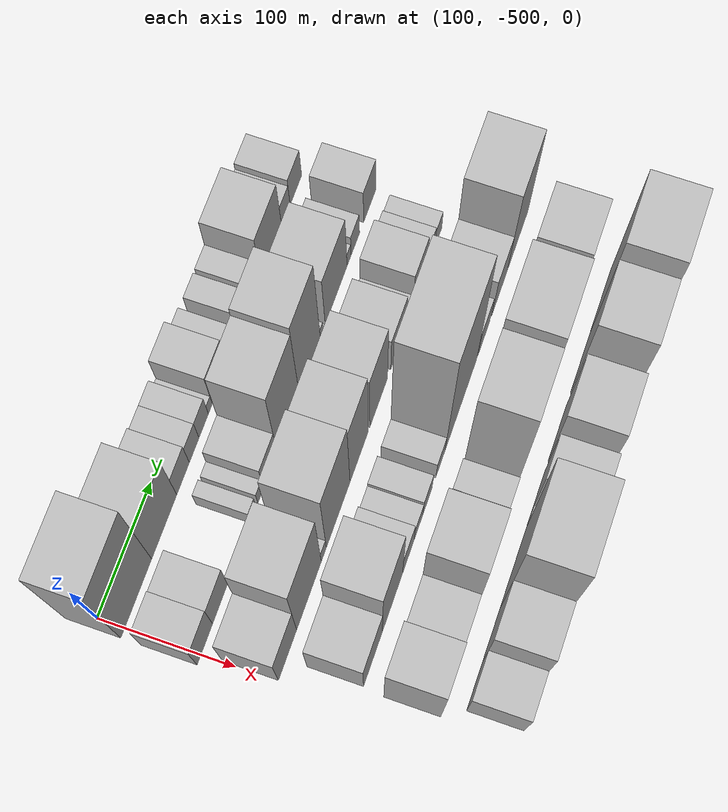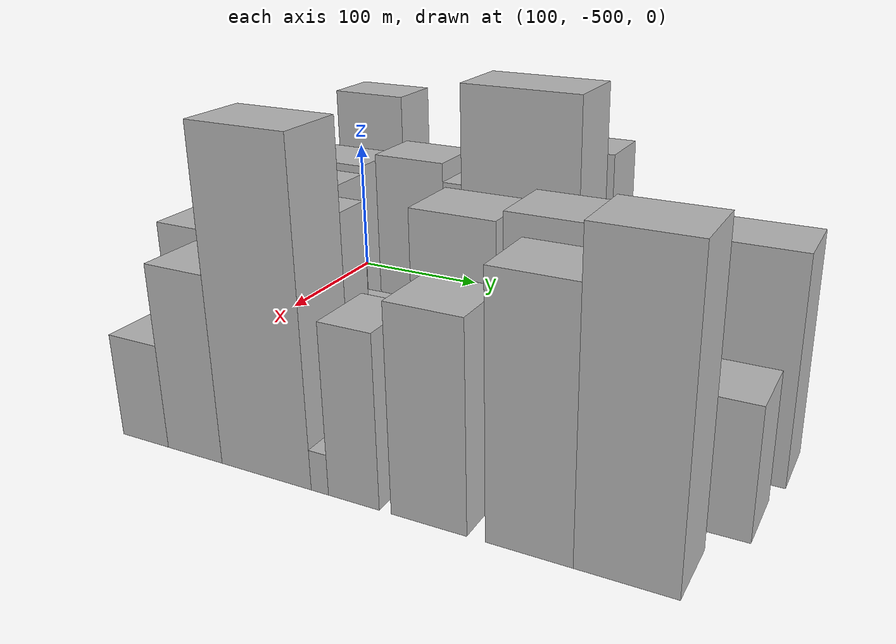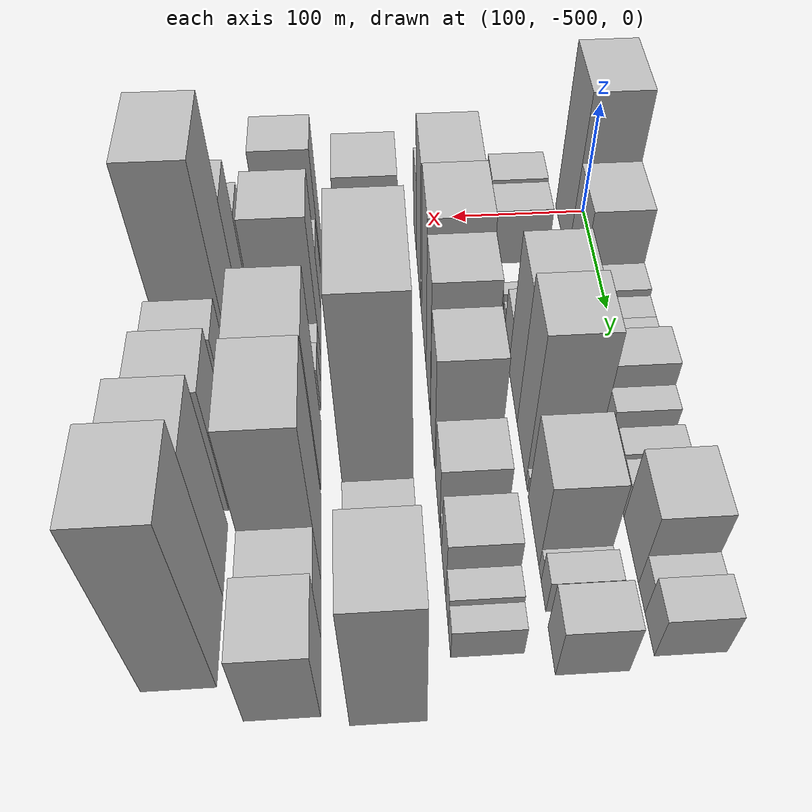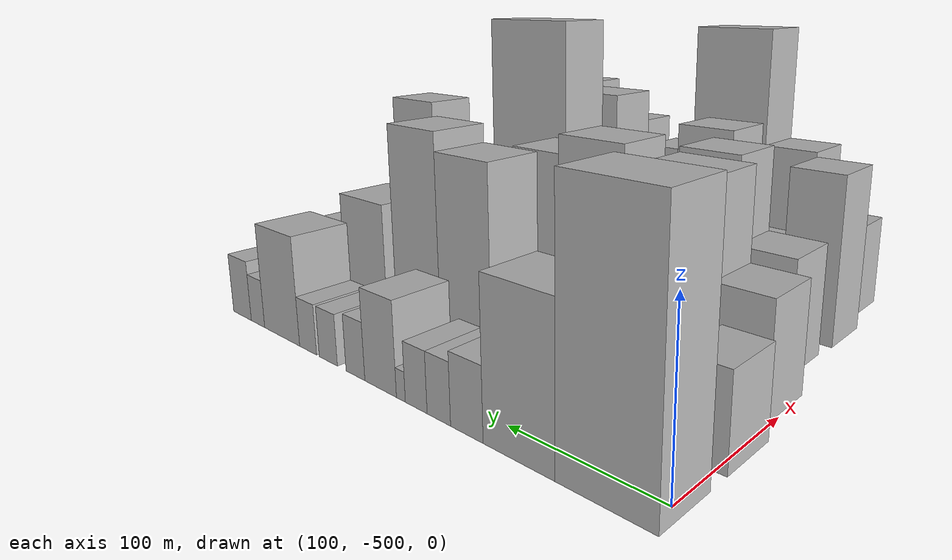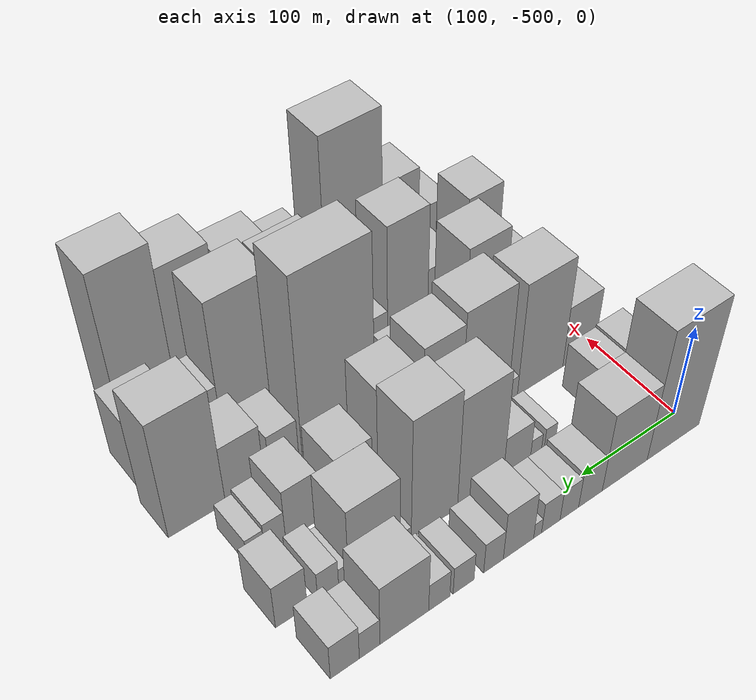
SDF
<sdf version="1.6">
 <world name="default">
  <model name="building_11">
   <static>1</static>
   <pose>100.0000 -478.4523 0 0.000000 0.000000 0.000000</pose>
   <link name="link">
    <pose>0 0 73.50 0 0 0</pose>
    <collision name="collision"><geometry><box><size>40.0000 57.1301 147.0000</size></box></geometry></collision>
    <visual name="visual">
     <cast_shadows>0</cast_shadows>
     <geometry><box><size>40.0000 57.1301 147.0000</size></box></geometry>
     <material>
      <script>
       <uri>model://HANNAS_wall/materials/scripts</uri>
       <uri>model://HANNAS_wall/materials/textures</uri>
       <name>vrc/HANNAS_wall</name>
      </script>
     </material>
    </visual>
   </link>
  </model>
  <model name="building_12">
   <static>1</static>
   <pose>100.0000 -426.1134 0 0.000000 0.000000 0.000000</pose>
   <link name="link">
    <pose>0 0 45.00 0 0 0</pose>
    <collision name="collision"><geometry><box><size>40.0000 47.5477 90.0000</size></box></geometry></collision>
    <visual name="visual">
     <cast_shadows>0</cast_shadows>
     <geometry><box><size>40.0000 47.5477 90.0000</size></box></geometry>
     <material>
      <script>
       <uri>model://HANNAS_wall/materials/scripts</uri>
       <uri>model://HANNAS_wall/materials/textures</uri>
       <name>vrc/HANNAS_wall</name>
      </script>
     </material>
    </visual>
   </link>
  </model>
  <model name="building_13">
   <static>1</static>
   <pose>100.0000 -390.1908 0 0.000000 0.000000 0.000000</pose>
   <link name="link">
    <pose>0 0 21.00 0 0 0</pose>
    <collision name="collision"><geometry><box><size>40.0000 24.2976 42.0000</size></box></geometry></collision>
    <visual name="visual">
     <cast_shadows>0</cast_shadows>
     <geometry><box><size>40.0000 24.2976 42.0000</size></box></geometry>
     <material>
      <script>
       <uri>model://HANNAS_wall/materials/scripts</uri>
       <uri>model://HANNAS_wall/materials/textures</uri>
       <name>vrc/HANNAS_wall</name>
      </script>
     </material>
    </visual>
   </link>
  </model>
  <model name="building_14">
   <static>1</static>
   <pose>100.0000 -368.6567 0 0.000000 0.000000 0.000000</pose>
   <link name="link">
    <pose>0 0 18.00 0 0 0</pose>
    <collision name="collision"><geometry><box><size>40.0000 18.7706 36.0000</size></box></geometry></collision>
    <visual name="visual">
     <cast_shadows>0</cast_shadows>
     <geometry><box><size>40.0000 18.7706 36.0000</size></box></geometry>
     <material>
      <script>
       <uri>model://HANNAS_wall/materials/scripts</uri>
       <uri>model://HANNAS_wall/materials/textures</uri>
       <name>vrc/HANNAS_wall</name>
      </script>
     </material>
    </visual>
   </link>
  </model>
  <model name="building_15">
   <static>1</static>
   <pose>100.0000 -350.0476 0 0.000000 0.000000 0.000000</pose>
   <link name="link">
    <pose>0 0 18.00 0 0 0</pose>
    <collision name="collision"><geometry><box><size>40.0000 18.4478 36.0000</size></box></geometry></collision>
    <visual name="visual">
     <cast_shadows>0</cast_shadows>
     <geometry><box><size>40.0000 18.4478 36.0000</size></box></geometry>
     <material>
      <script>
       <uri>model://HANNAS_wall/materials/scripts</uri>
       <uri>model://HANNAS_wall/materials/textures</uri>
       <name>vrc/HANNAS_wall</name>
      </script>
     </material>
    </visual>
   </link>
  </model>
  <model name="building_16">
   <static>1</static>
   <pose>100.0000 -336.9189 0 0.000000 0.000000 0.000000</pose>
   <link name="link">
    <pose>0 0 9.00 0 0 0</pose>
    <collision name="collision"><geometry><box><size>40.0000 7.8095 18.0000</size></box></geometry></collision>
    <visual name="visual">
     <cast_shadows>0</cast_shadows>
     <geometry><box><size>40.0000 7.8095 18.0000</size></box></geometry>
     <material>
      <script>
       <uri>model://HANNAS_wall/materials/scripts</uri>
       <uri>model://HANNAS_wall/materials/textures</uri>
       <name>vrc/HANNAS_wall</name>
      </script>
     </material>
    </visual>
   </link>
  </model>
  <model name="building_17">
   <static>1</static>
   <pose>100.0000 -318.3340 0 0.000000 0.000000 0.000000</pose>
   <link name="link">
    <pose>0 0 28.50 0 0 0</pose>
    <collision name="collision"><geometry><box><size>40.0000 29.3602 57.0000</size></box></geometry></collision>
    <visual name="visual">
     <cast_shadows>0</cast_shadows>
     <geometry><box><size>40.0000 29.3602 57.0000</size></box></geometry>
     <material>
      <script>
       <uri>model://HANNAS_wall/materials/scripts</uri>
       <uri>model://HANNAS_wall/materials/textures</uri>
       <name>vrc/HANNAS_wall</name>
      </script>
     </material>
    </visual>
   </link>
  </model>
  <model name="building_18">
   <static>1</static>
   <pose>100.0000 -294.3036 0 0.000000 0.000000 0.000000</pose>
   <link name="link">
    <pose>0 0 18.00 0 0 0</pose>
    <collision name="collision"><geometry><box><size>40.0000 18.7005 36.0000</size></box></geometry></collision>
    <visual name="visual">
     <cast_shadows>0</cast_shadows>
     <geometry><box><size>40.0000 18.7005 36.0000</size></box></geometry>
     <material>
      <script>
       <uri>model://HANNAS_wall/materials/scripts</uri>
       <uri>model://HANNAS_wall/materials/textures</uri>
       <name>vrc/HANNAS_wall</name>
      </script>
     </material>
    </visual>
   </link>
  </model>
  <model name="building_19">
   <static>1</static>
   <pose>100.0000 -266.2301 0 0.000000 0.000000 0.000000</pose>
   <link name="link">
    <pose>0 0 16.50 0 0 0</pose>
    <collision name="collision"><geometry><box><size>40.0000 19.4466 33.0000</size></box></geometry></collision>
    <visual name="visual">
     <cast_shadows>0</cast_shadows>
     <geometry><box><size>40.0000 19.4466 33.0000</size></box></geometry>
     <material>
      <script>
       <uri>model://HANNAS_wall/materials/scripts</uri>
       <uri>model://HANNAS_wall/materials/textures</uri>
       <name>vrc/HANNAS_wall</name>
      </script>
     </material>
    </visual>
   </link>
  </model>
  <model name="building_20">
   <static>1</static>
   <pose>100.0000 -243.8483 0 0.000000 0.000000 0.000000</pose>
   <link name="link">
    <pose>0 0 16.50 0 0 0</pose>
    <collision name="collision"><geometry><box><size>40.0000 19.3169 33.0000</size></box></geometry></collision>
    <visual name="visual">
     <cast_shadows>0</cast_shadows>
     <geometry><box><size>40.0000 19.3169 33.0000</size></box></geometry>
     <material>
      <script>
       <uri>model://HANNAS_wall/materials/scripts</uri>
       <uri>model://HANNAS_wall/materials/textures</uri>
       <name>vrc/HANNAS_wall</name>
      </script>
     </material>
    </visual>
   </link>
  </model>
  <model name="building_21">
   <static>1</static>
   <pose>100.0000 -212.6114 0 0.000000 0.000000 0.000000</pose>
   <link name="link">
    <pose>0 0 36.00 0 0 0</pose>
    <collision name="collision"><geometry><box><size>40.0000 43.1568 72.0000</size></box></geometry></collision>
    <visual name="visual">
     <cast_shadows>0</cast_shadows>
     <geometry><box><size>40.0000 43.1568 72.0000</size></box></geometry>
     <material>
      <script>
       <uri>model://HANNAS_wall/materials/scripts</uri>
       <uri>model://HANNAS_wall/materials/textures</uri>
       <name>vrc/HANNAS_wall</name>
      </script>
     </material>
    </visual>
   </link>
  </model>
  <model name="building_22">
   <static>1</static>
   <pose>100.0000 -182.1279 0 0.000000 0.000000 0.000000</pose>
   <link name="link">
    <pose>0 0 16.50 0 0 0</pose>
    <collision name="collision"><geometry><box><size>40.0000 17.8102 33.0000</size></box></geometry></collision>
    <visual name="visual">
     <cast_shadows>0</cast_shadows>
     <geometry><box><size>40.0000 17.8102 33.0000</size></box></geometry>
     <material>
      <script>
       <uri>model://HANNAS_wall/materials/scripts</uri>
       <uri>model://HANNAS_wall/materials/textures</uri>
       <name>vrc/HANNAS_wall</name>
      </script>
     </material>
    </visual>
   </link>
  </model>
  <model name="building_23">
   <static>1</static>
   <pose>100.0000 -160.9204 0 0.000000 0.000000 0.000000</pose>
   <link name="link">
    <pose>0 0 21.00 0 0 0</pose>
    <collision name="collision"><geometry><box><size>40.0000 24.6049 42.0000</size></box></geometry></collision>
    <visual name="visual">
     <cast_shadows>0</cast_shadows>
     <geometry><box><size>40.0000 24.6049 42.0000</size></box></geometry>
     <material>
      <script>
       <uri>model://HANNAS_wall/materials/scripts</uri>
       <uri>model://HANNAS_wall/materials/textures</uri>
       <name>vrc/HANNAS_wall</name>
      </script>
     </material>
    </visual>
   </link>
  </model>
  <model name="building_70">
   <static>1</static>
   <pose>155.0000 -492.4519 0 0.000000 0.000000 0.000000</pose>
   <link name="link">
    <pose>0 0 27.00 0 0 0</pose>
    <collision name="collision"><geometry><box><size>40.0000 29.1599 54.0000</size></box></geometry></collision>
    <visual name="visual">
     <cast_shadows>0</cast_shadows>
     <geometry><box><size>40.0000 29.1599 54.0000</size></box></geometry>
     <material>
      <script>
       <uri>model://HANNAS_wall/materials/scripts</uri>
       <uri>model://HANNAS_wall/materials/textures</uri>
       <name>vrc/HANNAS_wall</name>
      </script>
     </material>
    </visual>
   </link>
  </model>
  <model name="building_71">
   <static>1</static>
   <pose>155.0000 -463.3509 0 0.000000 0.000000 0.000000</pose>
   <link name="link">
    <pose>0 0 25.50 0 0 0</pose>
    <collision name="collision"><geometry><box><size>40.0000 29.0419 51.0000</size></box></geometry></collision>
    <visual name="visual">
     <cast_shadows>0</cast_shadows>
     <geometry><box><size>40.0000 29.0419 51.0000</size></box></geometry>
     <material>
      <script>
       <uri>model://HANNAS_wall/materials/scripts</uri>
       <uri>model://HANNAS_wall/materials/textures</uri>
       <name>vrc/HANNAS_wall</name>
      </script>
     </material>
    </visual>
   </link>
  </model>
  <model name="building_72">
   <static>1</static>
   <pose>155.0000 -398.5140 0 0.000000 0.000000 0.000000</pose>
   <link name="link">
    <pose>0 0 13.50 0 0 0</pose>
    <collision name="collision"><geometry><box><size>40.0000 11.5440 27.0000</size></box></geometry></collision>
    <visual name="visual">
     <cast_shadows>0</cast_shadows>
     <geometry><box><size>40.0000 11.5440 27.0000</size></box></geometry>
     <material>
      <script>
       <uri>model://HANNAS_wall/materials/scripts</uri>
       <uri>model://HANNAS_wall/materials/textures</uri>
       <name>vrc/HANNAS_wall</name>
      </script>
     </material>
    </visual>
   </link>
  </model>
  <model name="building_73">
   <static>1</static>
   <pose>155.0000 -384.1183 0 0.000000 0.000000 0.000000</pose>
   <link name="link">
    <pose>0 0 12.00 0 0 0</pose>
    <collision name="collision"><geometry><box><size>40.0000 11.2474 24.0000</size></box></geometry></collision>
    <visual name="visual">
     <cast_shadows>0</cast_shadows>
     <geometry><box><size>40.0000 11.2474 24.0000</size></box></geometry>
     <material>
      <script>
       <uri>model://HANNAS_wall/materials/scripts</uri>
       <uri>model://HANNAS_wall/materials/textures</uri>
       <name>vrc/HANNAS_wall</name>
      </script>
     </material>
    </visual>
   </link>
  </model>
  <model name="building_74">
   <static>1</static>
   <pose>155.0000 -364.7900 0 0.000000 0.000000 0.000000</pose>
   <link name="link">
    <pose>0 0 24.00 0 0 0</pose>
    <collision name="collision"><geometry><box><size>40.0000 27.4093 48.0000</size></box></geometry></collision>
    <visual name="visual">
     <cast_shadows>0</cast_shadows>
     <geometry><box><size>40.0000 27.4093 48.0000</size></box></geometry>
     <material>
      <script>
       <uri>model://HANNAS_wall/materials/scripts</uri>
       <uri>model://HANNAS_wall/materials/textures</uri>
       <name>vrc/HANNAS_wall</name>
      </script>
     </material>
    </visual>
   </link>
  </model>
  <model name="building_75">
   <static>1</static>
   <pose>155.0000 -328.5406 0 0.000000 0.000000 0.000000</pose>
   <link name="link">
    <pose>0 0 63.00 0 0 0</pose>
    <collision name="collision"><geometry><box><size>40.0000 45.0895 126.0000</size></box></geometry></collision>
    <visual name="visual">
     <cast_shadows>0</cast_shadows>
     <geometry><box><size>40.0000 45.0895 126.0000</size></box></geometry>
     <material>
      <script>
       <uri>model://HANNAS_wall/materials/scripts</uri>
       <uri>model://HANNAS_wall/materials/textures</uri>
       <name>vrc/HANNAS_wall</name>
      </script>
     </material>
    </visual>
   </link>
  </model>
  <model name="building_76">
   <static>1</static>
   <pose>155.0000 -284.0143 0 0.000000 0.000000 0.000000</pose>
   <link name="link">
    <pose>0 0 69.00 0 0 0</pose>
    <collision name="collision"><geometry><box><size>40.0000 43.9630 138.0000</size></box></geometry></collision>
    <visual name="visual">
     <cast_shadows>0</cast_shadows>
     <geometry><box><size>40.0000 43.9630 138.0000</size></box></geometry>
     <material>
      <script>
       <uri>model://HANNAS_wall/materials/scripts</uri>
       <uri>model://HANNAS_wall/materials/textures</uri>
       <name>vrc/HANNAS_wall</name>
      </script>
     </material>
    </visual>
   </link>
  </model>
  <model name="building_77">
   <static>1</static>
   <pose>155.0000 -258.7945 0 0.000000 0.000000 0.000000</pose>
   <link name="link">
    <pose>0 0 7.50 0 0 0</pose>
    <collision name="collision"><geometry><box><size>40.0000 6.4765 15.0000</size></box></geometry></collision>
    <visual name="visual">
     <cast_shadows>0</cast_shadows>
     <geometry><box><size>40.0000 6.4765 15.0000</size></box></geometry>
     <material>
      <script>
       <uri>model://HANNAS_wall/materials/scripts</uri>
       <uri>model://HANNAS_wall/materials/textures</uri>
       <name>vrc/HANNAS_wall</name>
      </script>
     </material>
    </visual>
   </link>
  </model>
  <model name="building_78">
   <static>1</static>
   <pose>155.0000 -228.1541 0 0.000000 0.000000 0.000000</pose>
   <link name="link">
    <pose>0 0 42.00 0 0 0</pose>
    <collision name="collision"><geometry><box><size>40.0000 46.8044 84.0000</size></box></geometry></collision>
    <visual name="visual">
     <cast_shadows>0</cast_shadows>
     <geometry><box><size>40.0000 46.8044 84.0000</size></box></geometry>
     <material>
      <script>
       <uri>model://HANNAS_wall/materials/scripts</uri>
       <uri>model://HANNAS_wall/materials/textures</uri>
       <name>vrc/HANNAS_wall</name>
      </script>
     </material>
    </visual>
   </link>
  </model>
  <model name="building_79">
   <static>1</static>
   <pose>155.0000 -200.3555 0 0.000000 0.000000 0.000000</pose>
   <link name="link">
    <pose>0 0 10.50 0 0 0</pose>
    <collision name="collision"><geometry><box><size>40.0000 8.7927 21.0000</size></box></geometry></collision>
    <visual name="visual">
     <cast_shadows>0</cast_shadows>
     <geometry><box><size>40.0000 8.7927 21.0000</size></box></geometry>
     <material>
      <script>
       <uri>model://HANNAS_wall/materials/scripts</uri>
       <uri>model://HANNAS_wall/materials/textures</uri>
       <name>vrc/HANNAS_wall</name>
      </script>
     </material>
    </visual>
   </link>
  </model>
  <model name="building_80">
   <static>1</static>
   <pose>155.0000 -186.7590 0 0.000000 0.000000 0.000000</pose>
   <link name="link">
    <pose>0 0 16.50 0 0 0</pose>
    <collision name="collision"><geometry><box><size>40.0000 18.4003 33.0000</size></box></geometry></collision>
    <visual name="visual">
     <cast_shadows>0</cast_shadows>
     <geometry><box><size>40.0000 18.4003 33.0000</size></box></geometry>
     <material>
      <script>
       <uri>model://HANNAS_wall/materials/scripts</uri>
       <uri>model://HANNAS_wall/materials/textures</uri>
       <name>vrc/HANNAS_wall</name>
      </script>
     </material>
    </visual>
   </link>
  </model>
  <model name="building_81">
   <static>1</static>
   <pose>155.0000 -154.9765 0 0.000000 0.000000 0.000000</pose>
   <link name="link">
    <pose>0 0 25.50 0 0 0</pose>
    <collision name="collision"><geometry><box><size>40.0000 27.1647 51.0000</size></box></geometry></collision>
    <visual name="visual">
     <cast_shadows>0</cast_shadows>
     <geometry><box><size>40.0000 27.1647 51.0000</size></box></geometry>
     <material>
      <script>
       <uri>model://HANNAS_wall/materials/scripts</uri>
       <uri>model://HANNAS_wall/materials/textures</uri>
       <name>vrc/HANNAS_wall</name>
      </script>
     </material>
    </visual>
   </link>
  </model>
  <model name="building_123">
   <static>1</static>
   <pose>210.0000 -480.9756 0 0.000000 0.000000 0.000000</pose>
   <link name="link">
    <pose>0 0 34.50 0 0 0</pose>
    <collision name="collision"><geometry><box><size>40.0000 35.8421 69.0000</size></box></geometry></collision>
    <visual name="visual">
     <cast_shadows>0</cast_shadows>
     <geometry><box><size>40.0000 35.8421 69.0000</size></box></geometry>
     <material>
      <script>
       <uri>model://HANNAS_wall/materials/scripts</uri>
       <uri>model://HANNAS_wall/materials/textures</uri>
       <name>vrc/HANNAS_wall</name>
      </script>
     </material>
    </visual>
   </link>
  </model>
  <model name="building_124">
   <static>1</static>
   <pose>210.0000 -438.4236 0 0.000000 0.000000 0.000000</pose>
   <link name="link">
    <pose>0 0 63.00 0 0 0</pose>
    <collision name="collision"><geometry><box><size>40.0000 49.2618 126.0000</size></box></geometry></collision>
    <visual name="visual">
     <cast_shadows>0</cast_shadows>
     <geometry><box><size>40.0000 49.2618 126.0000</size></box></geometry>
     <material>
      <script>
       <uri>model://HANNAS_wall/materials/scripts</uri>
       <uri>model://HANNAS_wall/materials/textures</uri>
       <name>vrc/HANNAS_wall</name>
      </script>
     </material>
    </visual>
   </link>
  </model>
  <model name="building_125">
   <static>1</static>
   <pose>210.0000 -408.6384 0 0.000000 0.000000 0.000000</pose>
   <link name="link">
    <pose>0 0 12.00 0 0 0</pose>
    <collision name="collision"><geometry><box><size>40.0000 10.3087 24.0000</size></box></geometry></collision>
    <visual name="visual">
     <cast_shadows>0</cast_shadows>
     <geometry><box><size>40.0000 10.3087 24.0000</size></box></geometry>
     <material>
      <script>
       <uri>model://HANNAS_wall/materials/scripts</uri>
       <uri>model://HANNAS_wall/materials/textures</uri>
       <name>vrc/HANNAS_wall</name>
      </script>
     </material>
    </visual>
   </link>
  </model>
  <model name="building_126">
   <static>1</static>
   <pose>210.0000 -379.1248 0 0.000000 0.000000 0.000000</pose>
   <link name="link">
    <pose>0 0 67.50 0 0 0</pose>
    <collision name="collision"><geometry><box><size>40.0000 48.7184 135.0000</size></box></geometry></collision>
    <visual name="visual">
     <cast_shadows>0</cast_shadows>
     <geometry><box><size>40.0000 48.7184 135.0000</size></box></geometry>
     <material>
      <script>
       <uri>model://HANNAS_wall/materials/scripts</uri>
       <uri>model://HANNAS_wall/materials/textures</uri>
       <name>vrc/HANNAS_wall</name>
      </script>
     </material>
    </visual>
   </link>
  </model>
  <model name="building_127">
   <static>1</static>
   <pose>210.0000 -335.4443 0 0.000000 0.000000 0.000000</pose>
   <link name="link">
    <pose>0 0 61.50 0 0 0</pose>
    <collision name="collision"><geometry><box><size>40.0000 38.6425 123.0000</size></box></geometry></collision>
    <visual name="visual">
     <cast_shadows>0</cast_shadows>
     <geometry><box><size>40.0000 38.6425 123.0000</size></box></geometry>
     <material>
      <script>
       <uri>model://HANNAS_wall/materials/scripts</uri>
       <uri>model://HANNAS_wall/materials/textures</uri>
       <name>vrc/HANNAS_wall</name>
      </script>
     </material>
    </visual>
   </link>
  </model>
  <model name="building_128">
   <static>1</static>
   <pose>210.0000 -294.1311 0 0.000000 0.000000 0.000000</pose>
   <link name="link">
    <pose>0 0 52.50 0 0 0</pose>
    <collision name="collision"><geometry><box><size>40.0000 37.9840 105.0000</size></box></geometry></collision>
    <visual name="visual">
     <cast_shadows>0</cast_shadows>
     <geometry><box><size>40.0000 37.9840 105.0000</size></box></geometry>
     <material>
      <script>
       <uri>model://HANNAS_wall/materials/scripts</uri>
       <uri>model://HANNAS_wall/materials/textures</uri>
       <name>vrc/HANNAS_wall</name>
      </script>
     </material>
    </visual>
   </link>
  </model>
  <model name="building_129">
   <static>1</static>
   <pose>210.0000 -250.9716 0 0.000000 0.000000 0.000000</pose>
   <link name="link">
    <pose>0 0 30.00 0 0 0</pose>
    <collision name="collision"><geometry><box><size>40.0000 34.3349 60.0000</size></box></geometry></collision>
    <visual name="visual">
     <cast_shadows>0</cast_shadows>
     <geometry><box><size>40.0000 34.3349 60.0000</size></box></geometry>
     <material>
      <script>
       <uri>model://HANNAS_wall/materials/scripts</uri>
       <uri>model://HANNAS_wall/materials/textures</uri>
       <name>vrc/HANNAS_wall</name>
      </script>
     </material>
    </visual>
   </link>
  </model>
  <model name="building_130">
   <static>1</static>
   <pose>210.0000 -224.2489 0 0.000000 0.000000 0.000000</pose>
   <link name="link">
    <pose>0 0 12.00 0 0 0</pose>
    <collision name="collision"><geometry><box><size>40.0000 11.1104 24.0000</size></box></geometry></collision>
    <visual name="visual">
     <cast_shadows>0</cast_shadows>
     <geometry><box><size>40.0000 11.1104 24.0000</size></box></geometry>
     <material>
      <script>
       <uri>model://HANNAS_wall/materials/scripts</uri>
       <uri>model://HANNAS_wall/materials/textures</uri>
       <name>vrc/HANNAS_wall</name>
      </script>
     </material>
    </visual>
   </link>
  </model>
  <model name="building_131">
   <static>1</static>
   <pose>210.0000 -203.4610 0 0.000000 0.000000 0.000000</pose>
   <link name="link">
    <pose>0 0 30.00 0 0 0</pose>
    <collision name="collision"><geometry><box><size>40.0000 30.4653 60.0000</size></box></geometry></collision>
    <visual name="visual">
     <cast_shadows>0</cast_shadows>
     <geometry><box><size>40.0000 30.4653 60.0000</size></box></geometry>
     <material>
      <script>
       <uri>model://HANNAS_wall/materials/scripts</uri>
       <uri>model://HANNAS_wall/materials/textures</uri>
       <name>vrc/HANNAS_wall</name>
      </script>
     </material>
    </visual>
   </link>
  </model>
  <model name="building_132">
   <static>1</static>
   <pose>210.0000 -179.1296 0 0.000000 0.000000 0.000000</pose>
   <link name="link">
    <pose>0 0 18.00 0 0 0</pose>
    <collision name="collision"><geometry><box><size>40.0000 18.1977 36.0000</size></box></geometry></collision>
    <visual name="visual">
     <cast_shadows>0</cast_shadows>
     <geometry><box><size>40.0000 18.1977 36.0000</size></box></geometry>
     <material>
      <script>
       <uri>model://HANNAS_wall/materials/scripts</uri>
       <uri>model://HANNAS_wall/materials/textures</uri>
       <name>vrc/HANNAS_wall</name>
      </script>
     </material>
    </visual>
   </link>
  </model>
  <model name="building_133">
   <static>1</static>
   <pose>210.0000 -162.3080 0 0.000000 0.000000 0.000000</pose>
   <link name="link">
    <pose>0 0 15.00 0 0 0</pose>
    <collision name="collision"><geometry><box><size>40.0000 15.4454 30.0000</size></box></geometry></collision>
    <visual name="visual">
     <cast_shadows>0</cast_shadows>
     <geometry><box><size>40.0000 15.4454 30.0000</size></box></geometry>
     <material>
      <script>
       <uri>model://HANNAS_wall/materials/scripts</uri>
       <uri>model://HANNAS_wall/materials/textures</uri>
       <name>vrc/HANNAS_wall</name>
      </script>
     </material>
    </visual>
   </link>
  </model>
  <model name="building_174">
   <static>1</static>
   <pose>265.0000 -464.8929 0 0.000000 0.000000 0.000000</pose>
   <link name="link">
    <pose>0 0 36.00 0 0 0</pose>
    <collision name="collision"><geometry><box><size>40.0000 38.2590 72.0000</size></box></geometry></collision>
    <visual name="visual">
     <cast_shadows>0</cast_shadows>
     <geometry><box><size>40.0000 38.2590 72.0000</size></box></geometry>
     <material>
      <script>
       <uri>model://HANNAS_wall/materials/scripts</uri>
       <uri>model://HANNAS_wall/materials/textures</uri>
       <name>vrc/HANNAS_wall</name>
      </script>
     </material>
    </visual>
   </link>
  </model>
  <model name="building_175">
   <static>1</static>
   <pose>265.0000 -424.7679 0 0.000000 0.000000 0.000000</pose>
   <link name="link">
    <pose>0 0 63.00 0 0 0</pose>
    <collision name="collision"><geometry><box><size>40.0000 41.9910 126.0000</size></box></geometry></collision>
    <visual name="visual">
     <cast_shadows>0</cast_shadows>
     <geometry><box><size>40.0000 41.9910 126.0000</size></box></geometry>
     <material>
      <script>
       <uri>model://HANNAS_wall/materials/scripts</uri>
       <uri>model://HANNAS_wall/materials/textures</uri>
       <name>vrc/HANNAS_wall</name>
      </script>
     </material>
    </visual>
   </link>
  </model>
  <model name="building_176">
   <static>1</static>
   <pose>265.0000 -391.5584 0 0.000000 0.000000 0.000000</pose>
   <link name="link">
    <pose>0 0 24.00 0 0 0</pose>
    <collision name="collision"><geometry><box><size>40.0000 24.4280 48.0000</size></box></geometry></collision>
    <visual name="visual">
     <cast_shadows>0</cast_shadows>
     <geometry><box><size>40.0000 24.4280 48.0000</size></box></geometry>
     <material>
      <script>
       <uri>model://HANNAS_wall/materials/scripts</uri>
       <uri>model://HANNAS_wall/materials/textures</uri>
       <name>vrc/HANNAS_wall</name>
      </script>
     </material>
    </visual>
   </link>
  </model>
  <model name="building_177">
   <static>1</static>
   <pose>265.0000 -369.9856 0 0.000000 0.000000 0.000000</pose>
   <link name="link">
    <pose>0 0 16.50 0 0 0</pose>
    <collision name="collision"><geometry><box><size>40.0000 18.7176 33.0000</size></box></geometry></collision>
    <visual name="visual">
     <cast_shadows>0</cast_shadows>
     <geometry><box><size>40.0000 18.7176 33.0000</size></box></geometry>
     <material>
      <script>
       <uri>model://HANNAS_wall/materials/scripts</uri>
       <uri>model://HANNAS_wall/materials/textures</uri>
       <name>vrc/HANNAS_wall</name>
      </script>
     </material>
    </visual>
   </link>
  </model>
  <model name="building_178">
   <static>1</static>
   <pose>265.0000 -350.5626 0 0.000000 0.000000 0.000000</pose>
   <link name="link">
    <pose>0 0 19.50 0 0 0</pose>
    <collision name="collision"><geometry><box><size>40.0000 20.1284 39.0000</size></box></geometry></collision>
    <visual name="visual">
     <cast_shadows>0</cast_shadows>
     <geometry><box><size>40.0000 20.1284 39.0000</size></box></geometry>
     <material>
      <script>
       <uri>model://HANNAS_wall/materials/scripts</uri>
       <uri>model://HANNAS_wall/materials/textures</uri>
       <name>vrc/HANNAS_wall</name>
      </script>
     </material>
    </visual>
   </link>
  </model>
  <model name="building_179">
   <static>1</static>
   <pose>265.0000 -322.4019 0 0.000000 0.000000 0.000000</pose>
   <link name="link">
    <pose>0 0 18.00 0 0 0</pose>
    <collision name="collision"><geometry><box><size>40.0000 20.1930 36.0000</size></box></geometry></collision>
    <visual name="visual">
     <cast_shadows>0</cast_shadows>
     <geometry><box><size>40.0000 20.1930 36.0000</size></box></geometry>
     <material>
      <script>
       <uri>model://HANNAS_wall/materials/scripts</uri>
       <uri>model://HANNAS_wall/materials/textures</uri>
       <name>vrc/HANNAS_wall</name>
      </script>
     </material>
    </visual>
   </link>
  </model>
  <model name="building_180">
   <static>1</static>
   <pose>265.0000 -277.0705 0 0.000000 0.000000 0.000000</pose>
   <link name="link">
    <pose>0 0 99.00 0 0 0</pose>
    <collision name="collision"><geometry><box><size>40.0000 70.4698 198.0000</size></box></geometry></collision>
    <visual name="visual">
     <cast_shadows>0</cast_shadows>
     <geometry><box><size>40.0000 70.4698 198.0000</size></box></geometry>
     <material>
      <script>
       <uri>model://HANNAS_wall/materials/scripts</uri>
       <uri>model://HANNAS_wall/materials/textures</uri>
       <name>vrc/HANNAS_wall</name>
      </script>
     </material>
    </visual>
   </link>
  </model>
  <model name="building_181">
   <static>1</static>
   <pose>265.0000 -225.2234 0 0.000000 0.000000 0.000000</pose>
   <link name="link">
    <pose>0 0 24.00 0 0 0</pose>
    <collision name="collision"><geometry><box><size>40.0000 27.2244 48.0000</size></box></geometry></collision>
    <visual name="visual">
     <cast_shadows>0</cast_shadows>
     <geometry><box><size>40.0000 27.2244 48.0000</size></box></geometry>
     <material>
      <script>
       <uri>model://HANNAS_wall/materials/scripts</uri>
       <uri>model://HANNAS_wall/materials/textures</uri>
       <name>vrc/HANNAS_wall</name>
      </script>
     </material>
    </visual>
   </link>
  </model>
  <model name="building_182">
   <static>1</static>
   <pose>265.0000 -189.0330 0 0.000000 0.000000 0.000000</pose>
   <link name="link">
    <pose>0 0 33.00 0 0 0</pose>
    <collision name="collision"><geometry><box><size>40.0000 35.1564 66.0000</size></box></geometry></collision>
    <visual name="visual">
     <cast_shadows>0</cast_shadows>
     <geometry><box><size>40.0000 35.1564 66.0000</size></box></geometry>
     <material>
      <script>
       <uri>model://HANNAS_wall/materials/scripts</uri>
       <uri>model://HANNAS_wall/materials/textures</uri>
       <name>vrc/HANNAS_wall</name>
      </script>
     </material>
    </visual>
   </link>
  </model>
  <model name="building_183">
   <static>1</static>
   <pose>265.0000 -146.4558 0 0.000000 0.000000 0.000000</pose>
   <link name="link">
    <pose>0 0 66.00 0 0 0</pose>
    <collision name="collision"><geometry><box><size>40.0000 49.9981 132.0000</size></box></geometry></collision>
    <visual name="visual">
     <cast_shadows>0</cast_shadows>
     <geometry><box><size>40.0000 49.9981 132.0000</size></box></geometry>
     <material>
      <script>
       <uri>model://HANNAS_wall/materials/scripts</uri>
       <uri>model://HANNAS_wall/materials/textures</uri>
       <name>vrc/HANNAS_wall</name>
      </script>
     </material>
    </visual>
   </link>
  </model>
  <model name="building_233">
   <static>1</static>
   <pose>320.0000 -468.1204 0 0.000000 0.000000 0.000000</pose>
   <link name="link">
    <pose>0 0 55.50 0 0 0</pose>
    <collision name="collision"><geometry><box><size>40.0000 36.1321 111.0000</size></box></geometry></collision>
    <visual name="visual">
     <cast_shadows>0</cast_shadows>
     <geometry><box><size>40.0000 36.1321 111.0000</size></box></geometry>
     <material>
      <script>
       <uri>model://HANNAS_wall/materials/scripts</uri>
       <uri>model://HANNAS_wall/materials/textures</uri>
       <name>vrc/HANNAS_wall</name>
      </script>
     </material>
    </visual>
   </link>
  </model>
  <model name="building_234">
   <static>1</static>
   <pose>320.0000 -446.3624 0 0.000000 0.000000 0.000000</pose>
   <link name="link">
    <pose>0 0 9.00 0 0 0</pose>
    <collision name="collision"><geometry><box><size>40.0000 7.3839 18.0000</size></box></geometry></collision>
    <visual name="visual">
     <cast_shadows>0</cast_shadows>
     <geometry><box><size>40.0000 7.3839 18.0000</size></box></geometry>
     <material>
      <script>
       <uri>model://HANNAS_wall/materials/scripts</uri>
       <uri>model://HANNAS_wall/materials/textures</uri>
       <name>vrc/HANNAS_wall</name>
      </script>
     </material>
    </visual>
   </link>
  </model>
  <model name="building_235">
   <static>1</static>
   <pose>320.0000 -426.1076 0 0.000000 0.000000 0.000000</pose>
   <link name="link">
    <pose>0 0 28.50 0 0 0</pose>
    <collision name="collision"><geometry><box><size>40.0000 33.1257 57.0000</size></box></geometry></collision>
    <visual name="visual">
     <cast_shadows>0</cast_shadows>
     <geometry><box><size>40.0000 33.1257 57.0000</size></box></geometry>
     <material>
      <script>
       <uri>model://HANNAS_wall/materials/scripts</uri>
       <uri>model://HANNAS_wall/materials/textures</uri>
       <name>vrc/HANNAS_wall</name>
      </script>
     </material>
    </visual>
   </link>
  </model>
  <model name="building_236">
   <static>1</static>
   <pose>320.0000 -388.3935 0 0.000000 0.000000 0.000000</pose>
   <link name="link">
    <pose>0 0 64.50 0 0 0</pose>
    <collision name="collision"><geometry><box><size>40.0000 42.3025 129.0000</size></box></geometry></collision>
    <visual name="visual">
     <cast_shadows>0</cast_shadows>
     <geometry><box><size>40.0000 42.3025 129.0000</size></box></geometry>
     <material>
      <script>
       <uri>model://HANNAS_wall/materials/scripts</uri>
       <uri>model://HANNAS_wall/materials/textures</uri>
       <name>vrc/HANNAS_wall</name>
      </script>
     </material>
    </visual>
   </link>
  </model>
  <model name="building_237">
   <static>1</static>
   <pose>320.0000 -356.6192 0 0.000000 0.000000 0.000000</pose>
   <link name="link">
    <pose>0 0 18.00 0 0 0</pose>
    <collision name="collision"><geometry><box><size>40.0000 21.2463 36.0000</size></box></geometry></collision>
    <visual name="visual">
     <cast_shadows>0</cast_shadows>
     <geometry><box><size>40.0000 21.2463 36.0000</size></box></geometry>
     <material>
      <script>
       <uri>model://HANNAS_wall/materials/scripts</uri>
       <uri>model://HANNAS_wall/materials/textures</uri>
       <name>vrc/HANNAS_wall</name>
      </script>
     </material>
    </visual>
   </link>
  </model>
  <model name="building_238">
   <static>1</static>
   <pose>320.0000 -334.9249 0 0.000000 0.000000 0.000000</pose>
   <link name="link">
    <pose>0 0 21.00 0 0 0</pose>
    <collision name="collision"><geometry><box><size>40.0000 22.1422 42.0000</size></box></geometry></collision>
    <visual name="visual">
     <cast_shadows>0</cast_shadows>
     <geometry><box><size>40.0000 22.1422 42.0000</size></box></geometry>
     <material>
      <script>
       <uri>model://HANNAS_wall/materials/scripts</uri>
       <uri>model://HANNAS_wall/materials/textures</uri>
       <name>vrc/HANNAS_wall</name>
      </script>
     </material>
    </visual>
   </link>
  </model>
  <model name="building_239">
   <static>1</static>
   <pose>320.0000 -289.0206 0 0.000000 0.000000 0.000000</pose>
   <link name="link">
    <pose>0 0 72.00 0 0 0</pose>
    <collision name="collision"><geometry><box><size>40.0000 49.6664 144.0000</size></box></geometry></collision>
    <visual name="visual">
     <cast_shadows>0</cast_shadows>
     <geometry><box><size>40.0000 49.6664 144.0000</size></box></geometry>
     <material>
      <script>
       <uri>model://HANNAS_wall/materials/scripts</uri>
       <uri>model://HANNAS_wall/materials/textures</uri>
       <name>vrc/HANNAS_wall</name>
      </script>
     </material>
    </visual>
   </link>
  </model>
  <model name="building_240">
   <static>1</static>
   <pose>320.0000 -232.4365 0 0.000000 0.000000 0.000000</pose>
   <link name="link">
    <pose>0 0 75.00 0 0 0</pose>
    <collision name="collision"><geometry><box><size>40.0000 55.5017 150.0000</size></box></geometry></collision>
    <visual name="visual">
     <cast_shadows>0</cast_shadows>
     <geometry><box><size>40.0000 55.5017 150.0000</size></box></geometry>
     <material>
      <script>
       <uri>model://HANNAS_wall/materials/scripts</uri>
       <uri>model://HANNAS_wall/materials/textures</uri>
       <name>vrc/HANNAS_wall</name>
      </script>
     </material>
    </visual>
   </link>
  </model>
  <model name="building_241">
   <static>1</static>
   <pose>320.0000 -187.4568 0 0.000000 0.000000 0.000000</pose>
   <link name="link">
    <pose>0 0 30.00 0 0 0</pose>
    <collision name="collision"><geometry><box><size>40.0000 34.4576 60.0000</size></box></geometry></collision>
    <visual name="visual">
     <cast_shadows>0</cast_shadows>
     <geometry><box><size>40.0000 34.4576 60.0000</size></box></geometry>
     <material>
      <script>
       <uri>model://HANNAS_wall/materials/scripts</uri>
       <uri>model://HANNAS_wall/materials/textures</uri>
       <name>vrc/HANNAS_wall</name>
      </script>
     </material>
    </visual>
   </link>
  </model>
  <model name="building_242">
   <static>1</static>
   <pose>320.0000 -148.6466 0 0.000000 0.000000 0.000000</pose>
   <link name="link">
    <pose>0 0 37.50 0 0 0</pose>
    <collision name="collision"><geometry><box><size>40.0000 43.1627 75.0000</size></box></geometry></collision>
    <visual name="visual">
     <cast_shadows>0</cast_shadows>
     <geometry><box><size>40.0000 43.1627 75.0000</size></box></geometry>
     <material>
      <script>
       <uri>model://HANNAS_wall/materials/scripts</uri>
       <uri>model://HANNAS_wall/materials/textures</uri>
       <name>vrc/HANNAS_wall</name>
      </script>
     </material>
    </visual>
   </link>
  </model>
  <model name="building_285">
   <static>1</static>
   <pose>375.0000 -459.9292 0 0.000000 0.000000 0.000000</pose>
   <link name="link">
    <pose>0 0 31.50 0 0 0</pose>
    <collision name="collision"><geometry><box><size>40.0000 33.6208 63.0000</size></box></geometry></collision>
    <visual name="visual">
     <cast_shadows>0</cast_shadows>
     <geometry><box><size>40.0000 33.6208 63.0000</size></box></geometry>
     <material>
      <script>
       <uri>model://HANNAS_wall/materials/scripts</uri>
       <uri>model://HANNAS_wall/materials/textures</uri>
       <name>vrc/HANNAS_wall</name>
      </script>
     </material>
    </visual>
   </link>
  </model>
  <model name="building_286">
   <static>1</static>
   <pose>375.0000 -423.9183 0 0.000000 0.000000 0.000000</pose>
   <link name="link">
    <pose>0 0 55.50 0 0 0</pose>
    <collision name="collision"><geometry><box><size>40.0000 38.4010 111.0000</size></box></geometry></collision>
    <visual name="visual">
     <cast_shadows>0</cast_shadows>
     <geometry><box><size>40.0000 38.4010 111.0000</size></box></geometry>
     <material>
      <script>
       <uri>model://HANNAS_wall/materials/scripts</uri>
       <uri>model://HANNAS_wall/materials/textures</uri>
       <name>vrc/HANNAS_wall</name>
      </script>
     </material>
    </visual>
   </link>
  </model>
  <model name="building_287">
   <static>1</static>
   <pose>375.0000 -375.0378 0 0.000000 0.000000 0.000000</pose>
   <link name="link">
    <pose>0 0 96.00 0 0 0</pose>
    <collision name="collision"><geometry><box><size>40.0000 59.3601 192.0000</size></box></geometry></collision>
    <visual name="visual">
     <cast_shadows>0</cast_shadows>
     <geometry><box><size>40.0000 59.3601 192.0000</size></box></geometry>
     <material>
      <script>
       <uri>model://HANNAS_wall/materials/scripts</uri>
       <uri>model://HANNAS_wall/materials/textures</uri>
       <name>vrc/HANNAS_wall</name>
      </script>
     </material>
    </visual>
   </link>
  </model>
  <model name="building_288">
   <static>1</static>
   <pose>375.0000 -339.9283 0 0.000000 0.000000 0.000000</pose>
   <link name="link">
    <pose>0 0 12.00 0 0 0</pose>
    <collision name="collision"><geometry><box><size>40.0000 10.8589 24.0000</size></box></geometry></collision>
    <visual name="visual">
     <cast_shadows>0</cast_shadows>
     <geometry><box><size>40.0000 10.8589 24.0000</size></box></geometry>
     <material>
      <script>
       <uri>model://HANNAS_wall/materials/scripts</uri>
       <uri>model://HANNAS_wall/materials/textures</uri>
       <name>vrc/HANNAS_wall</name>
      </script>
     </material>
    </visual>
   </link>
  </model>
  <model name="building_289">
   <static>1</static>
   <pose>375.0000 -318.9658 0 0.000000 0.000000 0.000000</pose>
   <link name="link">
    <pose>0 0 49.50 0 0 0</pose>
    <collision name="collision"><geometry><box><size>40.0000 31.0662 99.0000</size></box></geometry></collision>
    <visual name="visual">
     <cast_shadows>0</cast_shadows>
     <geometry><box><size>40.0000 31.0662 99.0000</size></box></geometry>
     <material>
      <script>
       <uri>model://HANNAS_wall/materials/scripts</uri>
       <uri>model://HANNAS_wall/materials/textures</uri>
       <name>vrc/HANNAS_wall</name>
      </script>
     </material>
    </visual>
   </link>
  </model>
  <model name="building_290">
   <static>1</static>
   <pose>375.0000 -274.8495 0 0.000000 0.000000 0.000000</pose>
   <link name="link">
    <pose>0 0 58.50 0 0 0</pose>
    <collision name="collision"><geometry><box><size>40.0000 43.1664 117.0000</size></box></geometry></collision>
    <visual name="visual">
     <cast_shadows>0</cast_shadows>
     <geometry><box><size>40.0000 43.1664 117.0000</size></box></geometry>
     <material>
      <script>
       <uri>model://HANNAS_wall/materials/scripts</uri>
       <uri>model://HANNAS_wall/materials/textures</uri>
       <name>vrc/HANNAS_wall</name>
      </script>
     </material>
    </visual>
   </link>
  </model>
  <model name="building_291">
   <static>1</static>
   <pose>375.0000 -220.3638 0 0.000000 0.000000 0.000000</pose>
   <link name="link">
    <pose>0 0 72.00 0 0 0</pose>
    <collision name="collision"><geometry><box><size>40.0000 45.8050 144.0000</size></box></geometry></collision>
    <visual name="visual">
     <cast_shadows>0</cast_shadows>
     <geometry><box><size>40.0000 45.8050 144.0000</size></box></geometry>
     <material>
      <script>
       <uri>model://HANNAS_wall/materials/scripts</uri>
       <uri>model://HANNAS_wall/materials/textures</uri>
       <name>vrc/HANNAS_wall</name>
      </script>
     </material>
    </visual>
   </link>
  </model>
  <model name="building_292">
   <static>1</static>
   <pose>375.0000 -171.6777 0 0.000000 0.000000 0.000000</pose>
   <link name="link">
    <pose>0 0 85.50 0 0 0</pose>
    <collision name="collision"><geometry><box><size>40.0000 51.5672 171.0000</size></box></geometry></collision>
    <visual name="visual">
     <cast_shadows>0</cast_shadows>
     <geometry><box><size>40.0000 51.5672 171.0000</size></box></geometry>
     <material>
      <script>
       <uri>model://HANNAS_wall/materials/scripts</uri>
       <uri>model://HANNAS_wall/materials/textures</uri>
       <name>vrc/HANNAS_wall</name>
      </script>
     </material>
    </visual>
   </link>
  </model>
 </world>
</sdf>
